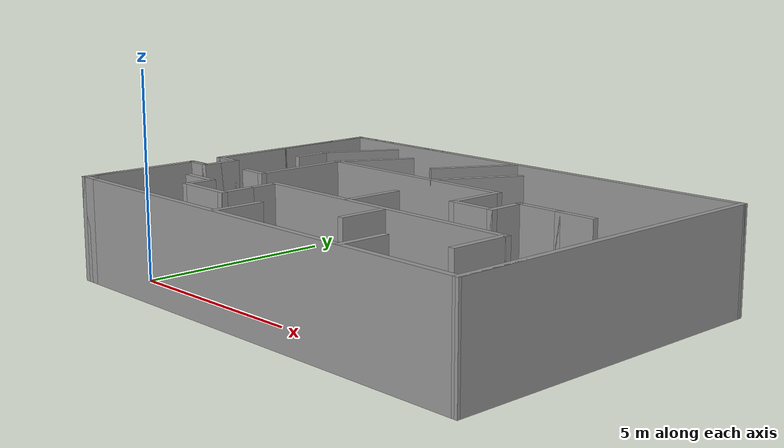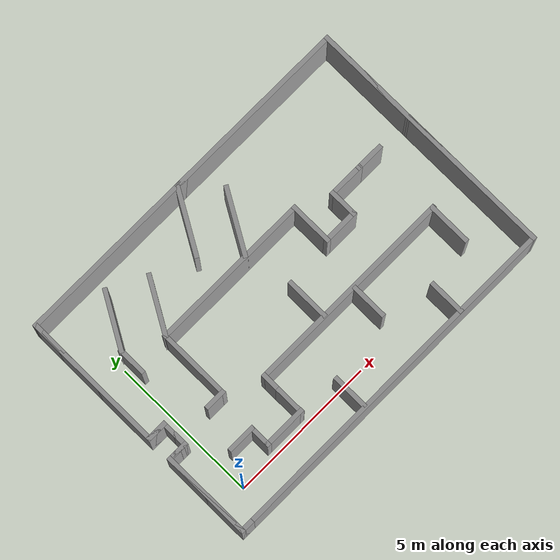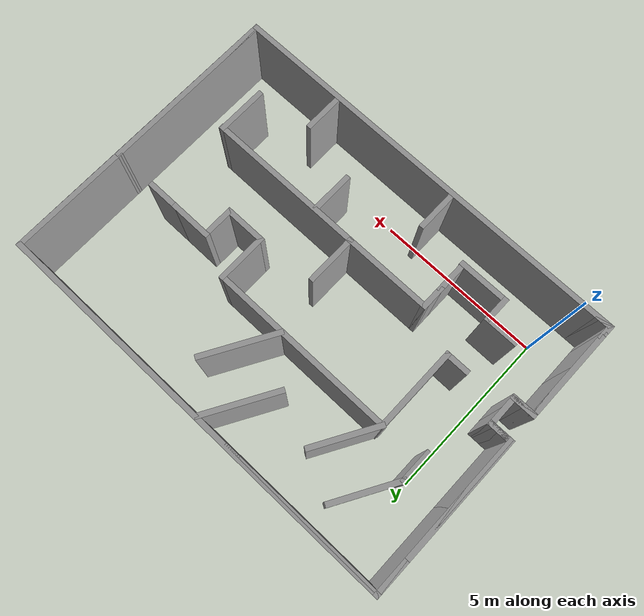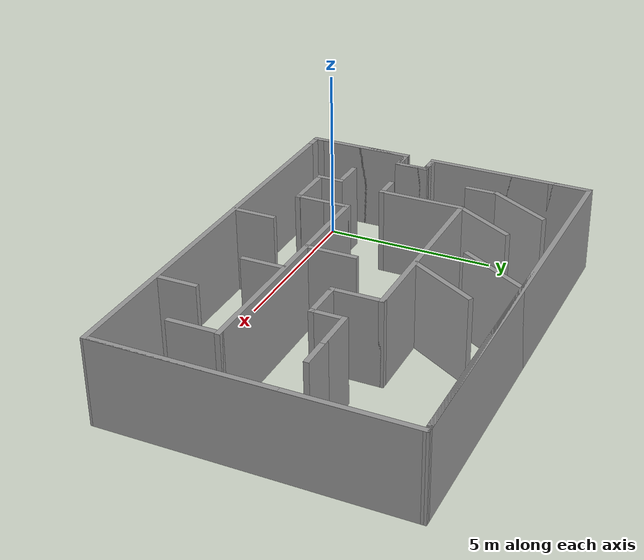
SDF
<?xml version='1.0'?>
<sdf version='1.7'>
  <model name='maze'>
    <pose>5.0482 3.24752 0 0 -0 0</pose>
    <link name='Wall_12'>
      <collision name='Wall_12_Collision'>
        <geometry>
          <box>
            <size>1 0.15 2.5</size>
          </box>
        </geometry>
        <pose>0 0 1.25 0 -0 0</pose>
      </collision>
      <visual name='Wall_12_Visual'>
        <pose>0 0 1.25 0 -0 0</pose>
        <geometry>
          <box>
            <size>1 0.15 2.5</size>
          </box>
        </geometry>
        <material>
          <script>
            <uri>file://media/materials/scripts/gazebo.material</uri>
            <name>Gazebo/Grey</name>
          </script>
          <ambient>1 1 1 1</ambient>
        </material>
        <meta>
          <layer>0</layer>
        </meta>
      </visual>
      <pose>-4.17032 -2.35058 0 0 -0 0</pose>
    </link>
    <link name='Wall_14'>
      <collision name='Wall_14_Collision'>
        <geometry>
          <box>
            <size>0.80247 0.15 2.5</size>
          </box>
        </geometry>
        <pose>0 0 1.25 0 -0 0</pose>
      </collision>
      <visual name='Wall_14_Visual'>
        <pose>0 0 1.25 0 -0 0</pose>
        <geometry>
          <box>
            <size>0.80247 0.15 2.5</size>
          </box>
        </geometry>
        <material>
          <script>
            <uri>file://media/materials/scripts/gazebo.material</uri>
            <name>Gazebo/Grey</name>
          </script>
          <ambient>1 1 1 1</ambient>
        </material>
        <meta>
          <layer>0</layer>
        </meta>
      </visual>
      <pose>-3.74532 -2.67682 0 0 -0 -1.5708</pose>
    </link>
    <link name='Wall_15'>
      <collision name='Wall_15_Collision'>
        <geometry>
          <box>
            <size>1.5 0.15 2.5</size>
          </box>
        </geometry>
        <pose>0 0 1.25 0 -0 0</pose>
      </collision>
      <visual name='Wall_15_Visual'>
        <pose>0 0 1.25 0 -0 0</pose>
        <geometry>
          <box>
            <size>1.5 0.15 2.5</size>
          </box>
        </geometry>
        <material>
          <script>
            <uri>file://media/materials/scripts/gazebo.material</uri>
            <name>Gazebo/Grey</name>
          </script>
          <ambient>1 1 1 1</ambient>
        </material>
        <meta>
          <layer>0</layer>
        </meta>
      </visual>
      <pose>-3.05283 -3.00305 0 0 -0 0</pose>
    </link>
    <link name='Wall_16'>
      <collision name='Wall_16_Collision'>
        <geometry>
          <box>
            <size>1.02263 0.15 2.5</size>
          </box>
        </geometry>
        <pose>0 0 1.25 0 -0 0</pose>
      </collision>
      <visual name='Wall_16_Visual'>
        <pose>0 0 1.25 0 -0 0</pose>
        <geometry>
          <box>
            <size>1.02263 0.15 2.5</size>
          </box>
        </geometry>
        <material>
          <script>
            <uri>file://media/materials/scripts/gazebo.material</uri>
            <name>Gazebo/Grey</name>
          </script>
          <ambient>1 1 1 1</ambient>
        </material>
        <meta>
          <layer>0</layer>
        </meta>
      </visual>
      <pose>-2.39532 -2.56674 0 0 -0 1.5708</pose>
    </link>
    <link name='Wall_17'>
      <collision name='Wall_17_Collision'>
        <geometry>
          <box>
            <size>0.75 0.15 2.5</size>
          </box>
        </geometry>
        <pose>0 0 1.25 0 -0 0</pose>
      </collision>
      <visual name='Wall_17_Visual'>
        <pose>0 0 1.25 0 -0 0</pose>
        <geometry>
          <box>
            <size>0.75 0.15 2.5</size>
          </box>
        </geometry>
        <material>
          <script>
            <uri>file://media/materials/scripts/gazebo.material</uri>
            <name>Gazebo/Grey</name>
          </script>
          <ambient>1 1 1 1</ambient>
        </material>
        <meta>
          <layer>0</layer>
        </meta>
      </visual>
      <pose>-2.39532 -1.83042 0 0 -0 1.5708</pose>
    </link>
    <link name='Wall_18'>
      <collision name='Wall_18_Collision'>
        <geometry>
          <box>
            <size>7.16659 0.15 2.5</size>
          </box>
        </geometry>
        <pose>0 0 1.25 0 -0 0</pose>
      </collision>
      <visual name='Wall_18_Visual'>
        <pose>0 0 1.25 0 -0 0</pose>
        <geometry>
          <box>
            <size>7.16659 0.15 2.5</size>
          </box>
        </geometry>
        <material>
          <script>
            <uri>file://media/materials/scripts/gazebo.material</uri>
            <name>Gazebo/Grey</name>
          </script>
          <ambient>1 1 1 1</ambient>
        </material>
        <meta>
          <layer>0</layer>
        </meta>
      </visual>
      <pose>1.11297 -1.53042 0 0 -0 0</pose>
    </link>
    <link name='Wall_19'>
      <collision name='Wall_19_Collision'>
        <geometry>
          <box>
            <size>1.5 0.15 2.5</size>
          </box>
        </geometry>
        <pose>0 0 1.25 0 -0 0</pose>
      </collision>
      <visual name='Wall_19_Visual'>
        <pose>0 0 1.25 0 -0 0</pose>
        <geometry>
          <box>
            <size>1.5 0.15 2.5</size>
          </box>
        </geometry>
        <material>
          <script>
            <uri>file://media/materials/scripts/gazebo.material</uri>
            <name>Gazebo/Grey</name>
          </script>
          <ambient>1 1 1 1</ambient>
        </material>
        <meta>
          <layer>0</layer>
        </meta>
      </visual>
      <pose>4.60115 -2.20542 0 0 -0 -1.5708</pose>
    </link>
    <link name='Wall_21'>
      <collision name='Wall_21_Collision'>
        <geometry>
          <box>
            <size>1.25 0.15 2.5</size>
          </box>
        </geometry>
        <pose>0 0 1.25 0 -0 0</pose>
      </collision>
      <visual name='Wall_21_Visual'>
        <pose>0 0 1.25 0 -0 0</pose>
        <geometry>
          <box>
            <size>1.25 0.15 2.5</size>
          </box>
        </geometry>
        <material>
          <script>
            <uri>file://media/materials/scripts/gazebo.material</uri>
            <name>Gazebo/Grey</name>
          </script>
          <ambient>1 1 1 1</ambient>
        </material>
        <meta>
          <layer>0</layer>
        </meta>
      </visual>
      <pose>-0.976991 -3.63502 0 0 -0 1.5708</pose>
    </link>
    <link name='Wall_23'>
      <collision name='Wall_23_Collision'>
        <geometry>
          <box>
            <size>1.25 0.15 2.5</size>
          </box>
        </geometry>
        <pose>0 0 1.25 0 -0 0</pose>
      </collision>
      <visual name='Wall_23_Visual'>
        <pose>0 0 1.25 0 -0 0</pose>
        <geometry>
          <box>
            <size>1.25 0.15 2.5</size>
          </box>
        </geometry>
        <material>
          <script>
            <uri>file://media/materials/scripts/gazebo.material</uri>
            <name>Gazebo/Grey</name>
          </script>
          <ambient>1 1 1 1</ambient>
        </material>
        <meta>
          <layer>0</layer>
        </meta>
      </visual>
      <pose>1.30367 -2.14945 0 0 -0 -1.5708</pose>
    </link>
    <link name='Wall_25'>
      <collision name='Wall_25_Collision'>
        <geometry>
          <box>
            <size>1.25 0.15 2.5</size>
          </box>
        </geometry>
        <pose>0 0 1.25 0 -0 0</pose>
      </collision>
      <visual name='Wall_25_Visual'>
        <pose>0 0 1.25 0 -0 0</pose>
        <geometry>
          <box>
            <size>1.25 0.15 2.5</size>
          </box>
        </geometry>
        <material>
          <script>
            <uri>file://media/materials/scripts/gazebo.material</uri>
            <name>Gazebo/Grey</name>
          </script>
          <ambient>1 1 1 1</ambient>
        </material>
        <meta>
          <layer>0</layer>
        </meta>
      </visual>
      <pose>2.99322 -3.68956 0 0 -0 -1.5708</pose>
    </link>
    <link name='Wall_27'>
      <collision name='Wall_27_Collision'>
        <geometry>
          <box>
            <size>5.25 0.15 2.5</size>
          </box>
        </geometry>
        <pose>0 0 1.25 0 -0 0</pose>
      </collision>
      <visual name='Wall_27_Visual'>
        <pose>0 0 1.25 0 -0 0</pose>
        <geometry>
          <box>
            <size>5.25 0.15 2.5</size>
          </box>
        </geometry>
        <material>
          <script>
            <uri>file://media/materials/scripts/gazebo.material</uri>
            <name>Gazebo/Grey</name>
          </script>
          <ambient>1 1 1 1</ambient>
        </material>
        <meta>
          <layer>0</layer>
        </meta>
      </visual>
      <pose>6.04669 -1.70002 0 0 -0 1.57207</pose>
    </link>
    <link name='Wall_29'>
      <collision name='Wall_29_Collision'>
        <geometry>
          <box>
            <size>1.2437 0.15 2.5</size>
          </box>
        </geometry>
        <pose>0 0 1.25 0 -0 0</pose>
      </collision>
      <visual name='Wall_29_Visual'>
        <pose>0 0 1.25 0 -0 0</pose>
        <geometry>
          <box>
            <size>1.2437 0.15 2.5</size>
          </box>
        </geometry>
        <material>
          <script>
            <uri>file://media/materials/scripts/gazebo.material</uri>
            <name>Gazebo/Grey</name>
          </script>
          <ambient>1 1 1 1</ambient>
        </material>
        <meta>
          <layer>0</layer>
        </meta>
      </visual>
      <pose>3.39669 0.849976 0 0 -0 3.14159</pose>
    </link>
    <link name='Wall_30'>
      <collision name='Wall_30_Collision'>
        <geometry>
          <box>
            <size>1 0.15 2.5</size>
          </box>
        </geometry>
        <pose>0 0 1.25 0 -0 0</pose>
      </collision>
      <visual name='Wall_30_Visual'>
        <pose>0 0 1.25 0 -0 0</pose>
        <geometry>
          <box>
            <size>1 0.15 2.5</size>
          </box>
        </geometry>
        <material>
          <script>
            <uri>file://media/materials/scripts/gazebo.material</uri>
            <name>Gazebo/Grey</name>
          </script>
          <ambient>1 1 1 1</ambient>
        </material>
        <meta>
          <layer>0</layer>
        </meta>
      </visual>
      <pose>2.84993 0.424976 0 0 -0 -1.5708</pose>
    </link>
    <link name='Wall_31'>
      <collision name='Wall_31_Collision'>
        <geometry>
          <box>
            <size>1.25 0.15 2.5</size>
          </box>
        </geometry>
        <pose>0 0 1.25 0 -0 0</pose>
      </collision>
      <visual name='Wall_31_Visual'>
        <pose>0 0 1.25 0 -0 0</pose>
        <geometry>
          <box>
            <size>1.25 0.15 2.5</size>
          </box>
        </geometry>
        <material>
          <script>
            <uri>file://media/materials/scripts/gazebo.material</uri>
            <name>Gazebo/Grey</name>
          </script>
          <ambient>1 1 1 1</ambient>
        </material>
        <meta>
          <layer>0</layer>
        </meta>
      </visual>
      <pose>2.29993 -2.4e-05 0 0 -0 3.14159</pose>
    </link>
    <link name='Wall_32'>
      <collision name='Wall_32_Collision'>
        <geometry>
          <box>
            <size>1.5 0.15 2.5</size>
          </box>
        </geometry>
        <pose>0 0 1.25 0 -0 0</pose>
      </collision>
      <visual name='Wall_32_Visual'>
        <pose>0 0 1.25 0 -0 0</pose>
        <geometry>
          <box>
            <size>1.5 0.15 2.5</size>
          </box>
        </geometry>
        <material>
          <script>
            <uri>file://media/materials/scripts/gazebo.material</uri>
            <name>Gazebo/Grey</name>
          </script>
          <ambient>1 1 1 1</ambient>
        </material>
        <meta>
          <layer>0</layer>
        </meta>
      </visual>
      <pose>1.74993 0.674976 0 0 -0 1.5708</pose>
    </link>
    <link name='Wall_33'>
      <collision name='Wall_33_Collision'>
        <geometry>
          <box>
            <size>5.5 0.15 2.5</size>
          </box>
        </geometry>
        <pose>0 0 1.25 0 -0 0</pose>
      </collision>
      <visual name='Wall_33_Visual'>
        <pose>0 0 1.25 0 -0 0</pose>
        <geometry>
          <box>
            <size>5.5 0.15 2.5</size>
          </box>
        </geometry>
        <material>
          <script>
            <uri>file://media/materials/scripts/gazebo.material</uri>
            <name>Gazebo/Grey</name>
          </script>
          <ambient>1 1 1 1</ambient>
        </material>
        <meta>
          <layer>0</layer>
        </meta>
      </visual>
      <pose>-0.925071 1.34998 0 0 -0 3.14159</pose>
    </link>
    <link name='Wall_35'>
      <collision name='Wall_35_Collision'>
        <geometry>
          <box>
            <size>1.5 0.15 2.5</size>
          </box>
        </geometry>
        <pose>0 0 1.25 0 -0 0</pose>
      </collision>
      <visual name='Wall_35_Visual'>
        <pose>0 0 1.25 0 -0 0</pose>
        <geometry>
          <box>
            <size>1.5 0.15 2.5</size>
          </box>
        </geometry>
        <material>
          <script>
            <uri>file://media/materials/scripts/gazebo.material</uri>
            <name>Gazebo/Grey</name>
          </script>
          <ambient>1 1 1 1</ambient>
        </material>
        <meta>
          <layer>0</layer>
        </meta>
      </visual>
      <pose>0.090123 -0.830357 0 0 -0 1.5708</pose>
    </link>
    <link name='Wall_37'>
      <collision name='Wall_37_Collision'>
        <geometry>
          <box>
            <size>2.5 0.15 2.5</size>
          </box>
        </geometry>
        <pose>0 0 1.25 0 -0 0</pose>
      </collision>
      <visual name='Wall_37_Visual'>
        <pose>0 0 1.25 0 -0 0</pose>
        <geometry>
          <box>
            <size>2.5 0.15 2.5</size>
          </box>
        </geometry>
        <material>
          <script>
            <uri>file://media/materials/scripts/gazebo.material</uri>
            <name>Gazebo/Grey</name>
          </script>
          <ambient>1 1 1 1</ambient>
        </material>
        <meta>
          <layer>0</layer>
        </meta>
      </visual>
      <pose>-3.60007 0.174976 0 0 -0 -1.5708</pose>
    </link>
    <link name='Wall_38'>
      <collision name='Wall_38_Collision'>
        <geometry>
          <box>
            <size>0.75 0.15 2.5</size>
          </box>
        </geometry>
        <pose>0 0 1.25 0 -0 0</pose>
      </collision>
      <visual name='Wall_38_Visual'>
        <pose>0 0 1.25 0 -0 0</pose>
        <geometry>
          <box>
            <size>0.75 0.15 2.5</size>
          </box>
        </geometry>
        <material>
          <script>
            <uri>file://media/materials/scripts/gazebo.material</uri>
            <name>Gazebo/Grey</name>
          </script>
          <ambient>1 1 1 1</ambient>
        </material>
        <meta>
          <layer>0</layer>
        </meta>
      </visual>
      <pose>-3.90007 -1.00002 0 0 -0 3.14159</pose>
    </link>
    <link name='Wall_40'>
      <collision name='Wall_40_Collision'>
        <geometry>
          <box>
            <size>0.75 0.15 2.5</size>
          </box>
        </geometry>
        <pose>0 0 1.25 0 -0 0</pose>
      </collision>
      <visual name='Wall_40_Visual'>
        <pose>0 0 1.25 0 -0 0</pose>
        <geometry>
          <box>
            <size>0.75 0.15 2.5</size>
          </box>
        </geometry>
        <material>
          <script>
            <uri>file://media/materials/scripts/gazebo.material</uri>
            <name>Gazebo/Grey</name>
          </script>
          <ambient>1 1 1 1</ambient>
        </material>
        <meta>
          <layer>0</layer>
        </meta>
      </visual>
      <pose>-5.75007 -1.30002 0 0 -0 0</pose>
    </link>
    <link name='Wall_41'>
      <collision name='Wall_41_Collision'>
        <geometry>
          <box>
            <size>1 0.15 2.5</size>
          </box>
        </geometry>
        <pose>0 0 1.25 0 -0 0</pose>
      </collision>
      <visual name='Wall_41_Visual'>
        <pose>0 0 1.25 0 -0 0</pose>
        <geometry>
          <box>
            <size>1 0.15 2.5</size>
          </box>
        </geometry>
        <material>
          <script>
            <uri>file://media/materials/scripts/gazebo.material</uri>
            <name>Gazebo/Grey</name>
          </script>
          <ambient>1 1 1 1</ambient>
        </material>
        <meta>
          <layer>0</layer>
        </meta>
      </visual>
      <pose>-5.45007 -0.875024 0 0 -0 1.5708</pose>
    </link>
    <link name='Wall_42'>
      <collision name='Wall_42_Collision'>
        <geometry>
          <box>
            <size>0.75 0.15 2.5</size>
          </box>
        </geometry>
        <pose>0 0 1.25 0 -0 0</pose>
      </collision>
      <visual name='Wall_42_Visual'>
        <pose>0 0 1.25 0 -0 0</pose>
        <geometry>
          <box>
            <size>0.75 0.15 2.5</size>
          </box>
        </geometry>
        <material>
          <script>
            <uri>file://media/materials/scripts/gazebo.material</uri>
            <name>Gazebo/Grey</name>
          </script>
          <ambient>1 1 1 1</ambient>
        </material>
        <meta>
          <layer>0</layer>
        </meta>
      </visual>
      <pose>-5.75007 -0.450024 0 0 -0 3.14159</pose>
    </link>
    <link name='Wall_43'>
      <collision name='Wall_43_Collision'>
        <geometry>
          <box>
            <size>3.75 0.15 2.5</size>
          </box>
        </geometry>
        <pose>0 0 1.25 0 -0 0</pose>
      </collision>
      <visual name='Wall_43_Visual'>
        <pose>0 0 1.25 0 -0 0</pose>
        <geometry>
          <box>
            <size>3.75 0.15 2.5</size>
          </box>
        </geometry>
        <material>
          <script>
            <uri>file://media/materials/scripts/gazebo.material</uri>
            <name>Gazebo/Grey</name>
          </script>
          <ambient>1 1 1 1</ambient>
        </material>
        <meta>
          <layer>0</layer>
        </meta>
      </visual>
      <pose>-6.05007 1.34998 0 0 -0 1.5708</pose>
    </link>
    <link name='Wall_46'>
      <collision name='Wall_46_Collision'>
        <geometry>
          <box>
            <size>1.25 0.15 2.5</size>
          </box>
        </geometry>
        <pose>0 0 1.25 0 -0 0</pose>
      </collision>
      <visual name='Wall_46_Visual'>
        <pose>0 0 1.25 0 -0 0</pose>
        <geometry>
          <box>
            <size>1.25 0.15 2.5</size>
          </box>
        </geometry>
        <material>
          <script>
            <uri>file://media/materials/scripts/gazebo.material</uri>
            <name>Gazebo/Grey</name>
          </script>
          <ambient>1 1 1 1</ambient>
        </material>
        <meta>
          <layer>0</layer>
        </meta>
      </visual>
      <pose>-6.05007 3.69998 0 0 -0 1.5708</pose>
    </link>
    <link name='Wall_47'>
      <collision name='Wall_47_Collision'>
        <geometry>
          <box>
            <size>12.25 0.15 2.5</size>
          </box>
        </geometry>
        <pose>0 0 1.25 0 -0 0</pose>
      </collision>
      <visual name='Wall_47_Visual'>
        <pose>0 0 1.25 0 -0 0</pose>
        <geometry>
          <box>
            <size>12.25 0.15 2.5</size>
          </box>
        </geometry>
        <material>
          <script>
            <uri>file://media/materials/scripts/gazebo.material</uri>
            <name>Gazebo/Grey</name>
          </script>
          <ambient>1 1 1 1</ambient>
        </material>
        <meta>
          <layer>0</layer>
        </meta>
      </visual>
      <pose>-7.2e-05 4.24998 0 0 -0 0</pose>
    </link>
    <link name='Wall_48'>
      <collision name='Wall_48_Collision'>
        <geometry>
          <box>
            <size>3.55001 0.15 2.5</size>
          </box>
        </geometry>
        <pose>0 0 1.25 0 -0 0</pose>
      </collision>
      <visual name='Wall_48_Visual'>
        <pose>0 0 1.25 0 -0 0</pose>
        <geometry>
          <box>
            <size>3.55001 0.15 2.5</size>
          </box>
        </geometry>
        <material>
          <script>
            <uri>file://media/materials/scripts/gazebo.material</uri>
            <name>Gazebo/Grey</name>
          </script>
          <ambient>1 1 1 1</ambient>
        </material>
        <meta>
          <layer>0</layer>
        </meta>
      </visual>
      <pose>6.04669 2.54998 0 0 -0 -1.5727</pose>
    </link>
    <link name='Wall_5'>
      <collision name='Wall_5_Collision'>
        <geometry>
          <box>
            <size>2.75 0.15 2.5</size>
          </box>
        </geometry>
        <pose>0 0 1.25 0 -0 0</pose>
      </collision>
      <visual name='Wall_5_Visual'>
        <pose>0 0 1.25 0 -0 0</pose>
        <geometry>
          <box>
            <size>2.75 0.15 2.5</size>
          </box>
        </geometry>
        <material>
          <script>
            <uri>file://media/materials/scripts/gazebo.material</uri>
            <name>Gazebo/Grey</name>
          </script>
          <ambient>1 1 1 1</ambient>
        </material>
        <meta>
          <layer>0</layer>
        </meta>
      </visual>
      <pose>-6.05007 -2.60002 0 0 -0 1.5708</pose>
    </link>
    <link name='Wall_50'>
      <collision name='Wall_50_Collision'>
        <geometry>
          <box>
            <size>1 0.15 2.5</size>
          </box>
        </geometry>
        <pose>0 0 1.25 0 -0 0</pose>
      </collision>
      <visual name='Wall_50_Visual'>
        <pose>0 0 1.25 0 -0 0</pose>
        <geometry>
          <box>
            <size>1 0.15 2.5</size>
          </box>
        </geometry>
        <material>
          <script>
            <uri>file://media/materials/scripts/gazebo.material</uri>
            <name>Gazebo/Grey</name>
          </script>
          <ambient>1 1 1 1</ambient>
        </material>
        <meta>
          <layer>0</layer>
        </meta>
      </visual>
      <pose>4.36844 0.849976 0 0 -0 0</pose>
    </link>
    <link name='Wall_52'>
      <collision name='Wall_52_Collision'>
        <geometry>
          <box>
            <size>2 0.15 2.5</size>
          </box>
        </geometry>
        <pose>0 0 1.25 0 -0 0</pose>
      </collision>
      <visual name='Wall_52_Visual'>
        <pose>0 0 1.25 0 -0 0</pose>
        <geometry>
          <box>
            <size>2 0.15 2.5</size>
          </box>
        </geometry>
        <material>
          <script>
            <uri>file://media/materials/scripts/gazebo.material</uri>
            <name>Gazebo/Grey</name>
          </script>
          <ambient>1 1 1 1</ambient>
        </material>
        <meta>
          <layer>0</layer>
        </meta>
      </visual>
      <pose>-3.13757 2.15105 0 0 -0 1.0472</pose>
    </link>
    <link name='Wall_54'>
      <collision name='Wall_54_Collision'>
        <geometry>
          <box>
            <size>2.25 0.15 2.5</size>
          </box>
        </geometry>
        <pose>0 0 1.25 0 -0 0</pose>
      </collision>
      <visual name='Wall_54_Visual'>
        <pose>0 0 1.25 0 -0 0</pose>
        <geometry>
          <box>
            <size>2.25 0.15 2.5</size>
          </box>
        </geometry>
        <material>
          <script>
            <uri>file://media/materials/scripts/gazebo.material</uri>
            <name>Gazebo/Grey</name>
          </script>
          <ambient>1 1 1 1</ambient>
        </material>
        <meta>
          <layer>0</layer>
        </meta>
      </visual>
      <pose>-0.768423 3.2961 0 0 -0 -2.0944</pose>
    </link>
    <link name='Wall_57'>
      <collision name='Wall_57_Collision'>
        <geometry>
          <box>
            <size>2.25 0.15 2.5</size>
          </box>
        </geometry>
        <pose>0 0 1.25 0 -0 0</pose>
      </collision>
      <visual name='Wall_57_Visual'>
        <pose>0 0 1.25 0 -0 0</pose>
        <geometry>
          <box>
            <size>2.25 0.15 2.5</size>
          </box>
        </geometry>
        <material>
          <script>
            <uri>file://media/materials/scripts/gazebo.material</uri>
            <name>Gazebo/Grey</name>
          </script>
          <ambient>1 1 1 1</ambient>
        </material>
        <meta>
          <layer>0</layer>
        </meta>
      </visual>
      <pose>0.241902 2.2846 0 0 -0 1.0472</pose>
    </link>
    <link name='Wall_60'>
      <collision name='Wall_60_Collision'>
        <geometry>
          <box>
            <size>2 0.15 2.5</size>
          </box>
        </geometry>
        <pose>0 0 1.25 0 -0 0</pose>
      </collision>
      <visual name='Wall_60_Visual'>
        <pose>0 0 1.25 0 -0 0</pose>
        <geometry>
          <box>
            <size>2 0.15 2.5</size>
          </box>
        </geometry>
        <material>
          <script>
            <uri>file://media/materials/scripts/gazebo.material</uri>
            <name>Gazebo/Grey</name>
          </script>
          <ambient>1 1 1 1</ambient>
        </material>
        <meta>
          <layer>0</layer>
        </meta>
      </visual>
      <pose>-4.35602 2.75633 0 0 -0 -2.0944</pose>
    </link>
    <link name='Wall_61'>
      <collision name='Wall_61_Collision'>
        <geometry>
          <box>
            <size>1 0.15 2.5</size>
          </box>
        </geometry>
        <pose>0 0 1.25 0 -0 0</pose>
      </collision>
      <visual name='Wall_61_Visual'>
        <pose>0 0 1.25 0 -0 0</pose>
        <geometry>
          <box>
            <size>1 0.15 2.5</size>
          </box>
        </geometry>
        <material>
          <script>
            <uri>file://media/materials/scripts/gazebo.material</uri>
            <name>Gazebo/Grey</name>
          </script>
          <ambient>1 1 1 1</ambient>
        </material>
        <meta>
          <layer>0</layer>
        </meta>
      </visual>
      <pose>-4.81852 1.53025 0 0 -0 -1.5708</pose>
    </link>
    <link name='Wall_69'>
      <collision name='Wall_69_Collision'>
        <geometry>
          <box>
            <size>12.25 0.15 2.5</size>
          </box>
        </geometry>
        <pose>0 0 1.25 0 -0 0</pose>
      </collision>
      <visual name='Wall_69_Visual'>
        <pose>0 0 1.25 0 -0 0</pose>
        <geometry>
          <box>
            <size>12.25 0.15 2.5</size>
          </box>
        </geometry>
        <material>
          <script>
            <uri>file://media/materials/scripts/gazebo.material</uri>
            <name>Gazebo/Grey</name>
          </script>
          <ambient>1 1 1 1</ambient>
        </material>
        <meta>
          <layer>0</layer>
        </meta>
      </visual>
      <pose>-7.2e-05 -4.25002 0 0 -0 0</pose>
    </link>
    <link name='Wall_7'>
      <collision name='Wall_7_Collision'>
        <geometry>
          <box>
            <size>0.5 0.15 2.5</size>
          </box>
        </geometry>
        <pose>0 0 1.25 0 -0 0</pose>
      </collision>
      <visual name='Wall_7_Visual'>
        <pose>0 0 1.25 0 -0 0</pose>
        <geometry>
          <box>
            <size>0.5 0.15 2.5</size>
          </box>
        </geometry>
        <material>
          <script>
            <uri>file://media/materials/scripts/gazebo.material</uri>
            <name>Gazebo/Grey</name>
          </script>
          <ambient>1 1 1 1</ambient>
        </material>
        <meta>
          <layer>0</layer>
        </meta>
      </visual>
      <pose>-6.05007 -4.07502 0 0 -0 -1.5708</pose>
    </link>
    <link name='Wall_70'>
      <collision name='Wall_70_Collision'>
        <geometry>
          <box>
            <size>8.65 0.15 2.5</size>
          </box>
        </geometry>
        <pose>0 0 1.25 0 -0 0</pose>
      </collision>
      <visual name='Wall_70_Visual'>
        <pose>0 0 1.25 0 -0 0</pose>
        <geometry>
          <box>
            <size>8.65 0.15 2.5</size>
          </box>
        </geometry>
        <material>
          <script>
            <uri>file://media/materials/scripts/gazebo.material</uri>
            <name>Gazebo/Grey</name>
          </script>
          <ambient>1 1 1 1</ambient>
        </material>
        <meta>
          <layer>0</layer>
        </meta>
      </visual>
      <pose>6.04993 -2.4e-05 0 0 -0 1.5708</pose>
    </link>
    <link name='Wall_71'>
      <collision name='Wall_71_Collision'>
        <geometry>
          <box>
            <size>12.25 0.15 2.5</size>
          </box>
        </geometry>
        <pose>0 0 1.25 0 -0 0</pose>
      </collision>
      <visual name='Wall_71_Visual'>
        <pose>0 0 1.25 0 -0 0</pose>
        <geometry>
          <box>
            <size>12.25 0.15 2.5</size>
          </box>
        </geometry>
        <material>
          <script>
            <uri>file://media/materials/scripts/gazebo.material</uri>
            <name>Gazebo/Grey</name>
          </script>
          <ambient>1 1 1 1</ambient>
        </material>
        <meta>
          <layer>0</layer>
        </meta>
      </visual>
      <pose>-7.2e-05 4.24998 0 0 -0 3.14159</pose>
    </link>
    <link name='Wall_72'>
      <collision name='Wall_72_Collision'>
        <geometry>
          <box>
            <size>4.85 0.15 2.5</size>
          </box>
        </geometry>
        <pose>0 0 1.25 0 -0 0</pose>
      </collision>
      <visual name='Wall_72_Visual'>
        <pose>0 0 1.25 0 -0 0</pose>
        <geometry>
          <box>
            <size>4.85 0.15 2.5</size>
          </box>
        </geometry>
        <material>
          <script>
            <uri>file://media/materials/scripts/gazebo.material</uri>
            <name>Gazebo/Grey</name>
          </script>
          <ambient>1 1 1 1</ambient>
        </material>
        <meta>
          <layer>0</layer>
        </meta>
      </visual>
      <pose>-6.05007 1.89998 0 0 -0 -1.5708</pose>
    </link>
    <link name='Wall_73'>
      <collision name='Wall_73_Collision'>
        <geometry>
          <box>
            <size>0.75 0.15 2.5</size>
          </box>
        </geometry>
        <pose>0 0 1.25 0 -0 0</pose>
      </collision>
      <visual name='Wall_73_Visual'>
        <pose>0 0 1.25 0 -0 0</pose>
        <geometry>
          <box>
            <size>0.75 0.15 2.5</size>
          </box>
        </geometry>
        <material>
          <script>
            <uri>file://media/materials/scripts/gazebo.material</uri>
            <name>Gazebo/Grey</name>
          </script>
          <ambient>1 1 1 1</ambient>
        </material>
        <meta>
          <layer>0</layer>
        </meta>
      </visual>
      <pose>-5.75007 -0.450024 0 0 -0 0</pose>
    </link>
    <link name='Wall_74'>
      <collision name='Wall_74_Collision'>
        <geometry>
          <box>
            <size>1 0.15 2.5</size>
          </box>
        </geometry>
        <pose>0 0 1.25 0 -0 0</pose>
      </collision>
      <visual name='Wall_74_Visual'>
        <pose>0 0 1.25 0 -0 0</pose>
        <geometry>
          <box>
            <size>1 0.15 2.5</size>
          </box>
        </geometry>
        <material>
          <script>
            <uri>file://media/materials/scripts/gazebo.material</uri>
            <name>Gazebo/Grey</name>
          </script>
          <ambient>1 1 1 1</ambient>
        </material>
        <meta>
          <layer>0</layer>
        </meta>
      </visual>
      <pose>-5.45007 -0.875024 0 0 -0 -1.5708</pose>
    </link>
    <link name='Wall_75'>
      <collision name='Wall_75_Collision'>
        <geometry>
          <box>
            <size>0.75 0.15 2.5</size>
          </box>
        </geometry>
        <pose>0 0 1.25 0 -0 0</pose>
      </collision>
      <visual name='Wall_75_Visual'>
        <pose>0 0 1.25 0 -0 0</pose>
        <geometry>
          <box>
            <size>0.75 0.15 2.5</size>
          </box>
        </geometry>
        <material>
          <script>
            <uri>file://media/materials/scripts/gazebo.material</uri>
            <name>Gazebo/Grey</name>
          </script>
          <ambient>1 1 1 1</ambient>
        </material>
        <meta>
          <layer>0</layer>
        </meta>
      </visual>
      <pose>-5.75007 -1.30002 0 0 -0 3.14159</pose>
    </link>
    <link name='Wall_76'>
      <collision name='Wall_76_Collision'>
        <geometry>
          <box>
            <size>3.1 0.15 2.5</size>
          </box>
        </geometry>
        <pose>0 0 1.25 0 -0 0</pose>
      </collision>
      <visual name='Wall_76_Visual'>
        <pose>0 0 1.25 0 -0 0</pose>
        <geometry>
          <box>
            <size>3.1 0.15 2.5</size>
          </box>
        </geometry>
        <material>
          <script>
            <uri>file://media/materials/scripts/gazebo.material</uri>
            <name>Gazebo/Grey</name>
          </script>
          <ambient>1 1 1 1</ambient>
        </material>
        <meta>
          <layer>0</layer>
        </meta>
      </visual>
      <pose>-6.05007 -2.77502 0 0 -0 -1.5708</pose>
    </link>
    <link name='Wall_77'>
      <collision name='Wall_77_Collision'>
        <geometry>
          <box>
            <size>0.5 0.15 2.5</size>
          </box>
        </geometry>
        <pose>0 0 1.25 0 -0 0</pose>
      </collision>
      <visual name='Wall_77_Visual'>
        <pose>0 0 1.25 0 -0 0</pose>
        <geometry>
          <box>
            <size>0.5 0.15 2.5</size>
          </box>
        </geometry>
        <material>
          <script>
            <uri>file://media/materials/scripts/gazebo.material</uri>
            <name>Gazebo/Grey</name>
          </script>
          <ambient>1 1 1 1</ambient>
        </material>
        <meta>
          <layer>0</layer>
        </meta>
      </visual>
      <pose>-5.87507 -4.25002 0 0 -0 0</pose>
    </link>
    <link name='Wall_8'>
      <collision name='Wall_8_Collision'>
        <geometry>
          <box>
            <size>12.25 0.15 2.5</size>
          </box>
        </geometry>
        <pose>0 0 1.25 0 -0 0</pose>
      </collision>
      <visual name='Wall_8_Visual'>
        <pose>0 0 1.25 0 -0 0</pose>
        <geometry>
          <box>
            <size>12.25 0.15 2.5</size>
          </box>
        </geometry>
        <material>
          <script>
            <uri>file://media/materials/scripts/gazebo.material</uri>
            <name>Gazebo/Grey</name>
          </script>
          <ambient>1 1 1 1</ambient>
        </material>
        <meta>
          <layer>0</layer>
        </meta>
      </visual>
      <pose>-7.2e-05 -4.25002 0 0 -0 0</pose>
    </link>
    <static>1</static>
  </model>
</sdf>
